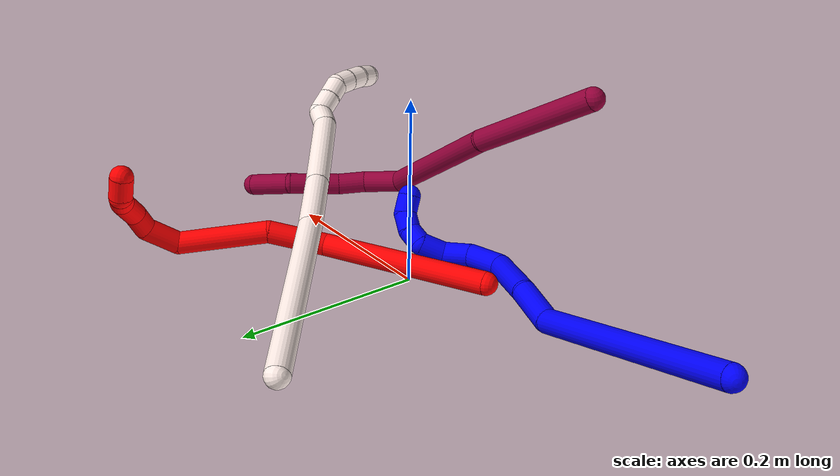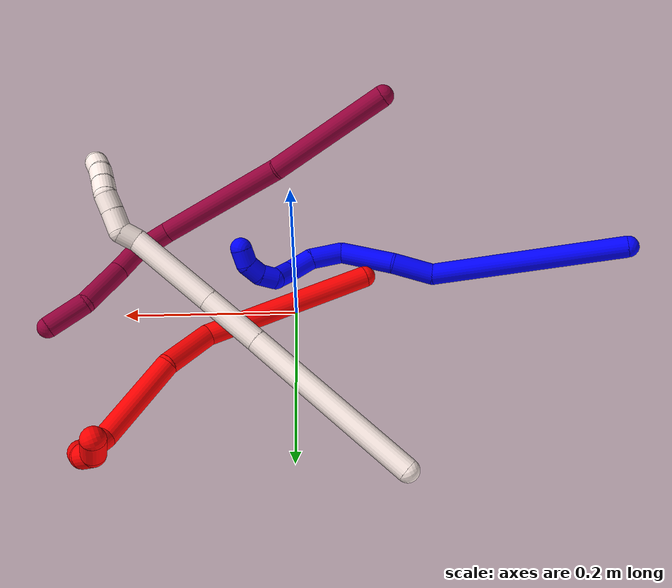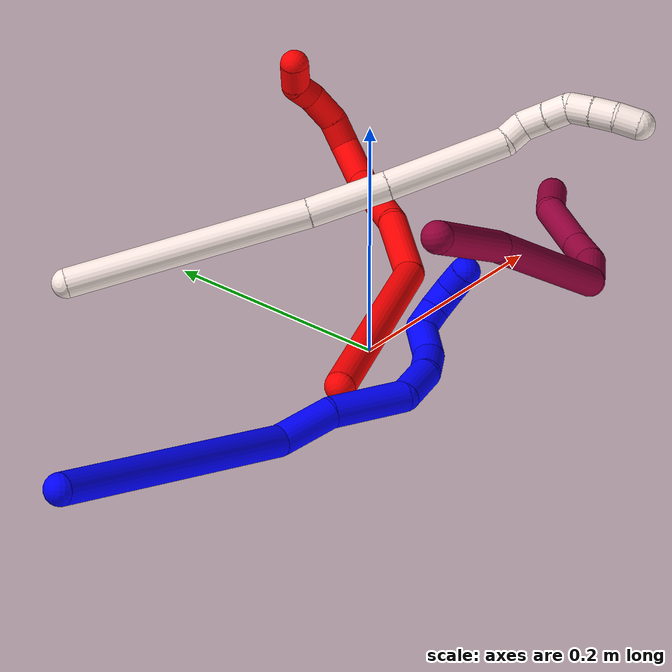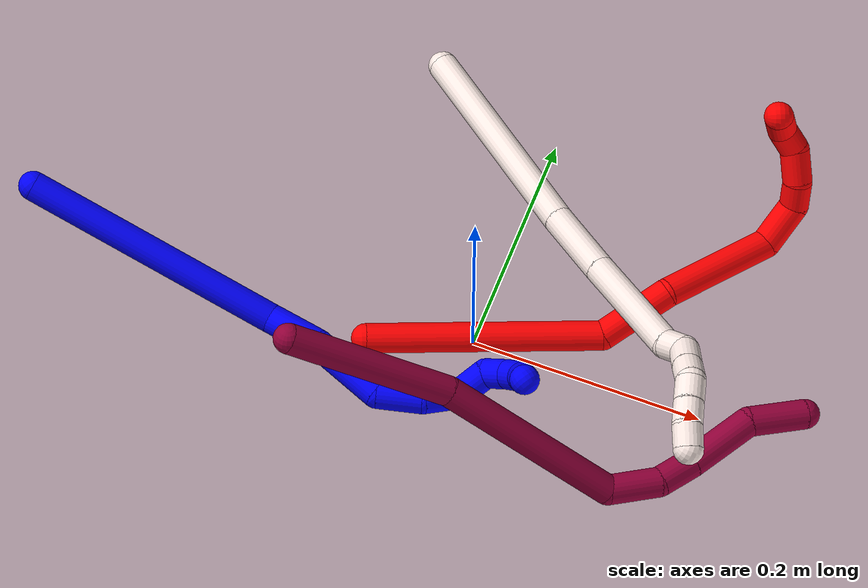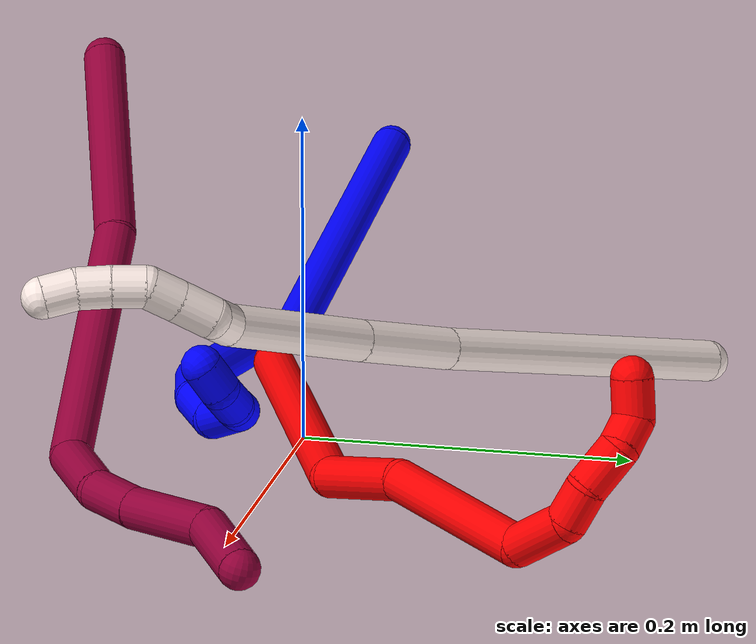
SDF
<sdf version="1.7">
 <world name="default">
  <model name="1">
   <static>0</static>
   <link name="1">
    <collision name="collision-cylinder-e_1_1_4">
     <pose>0.049863 0.018361 -0.10019 -2.96034 0.455232 -2.39384</pose>
     <geometry><cylinder><radius>0.0125</radius><length>0.226817</length></cylinder></geometry>
     <surface>
      <friction><ode><mu>1.16</mu><mu2>1.16</mu2><slip1>0</slip1><slip2>0</slip2></ode></friction>
      <contact><ode><kp>1e+06</kp><kd>1</kd><max_vel>0</max_vel><min_depth>0.001</min_depth></ode></contact>
     </surface>
    </collision>
    <visual name="visual-cylinder-e_1_1_4">
     <pose>0.049863 0.018361 -0.10019 -2.96034 0.455232 -2.39384</pose>
     <geometry><cylinder><radius>0.0125</radius><length>0.226817</length></cylinder></geometry>
     <material><ambient>0 0 1 1</ambient></material>
    </visual>
    <collision name="collision-cylinder-e_2_4_5">
     <pose>0.108578 0.029643 -0.221955 2.82448 0.371749 1.73224</pose>
     <geometry><cylinder><radius>0.0125</radius><length>0.048741</length></cylinder></geometry>
     <surface>
      <friction><ode><mu>1.16</mu><mu2>1.16</mu2><slip1>0</slip1><slip2>0</slip2></ode></friction>
      <contact><ode><kp>1e+06</kp><kd>1</kd><max_vel>0</max_vel><min_depth>0.001</min_depth></ode></contact>
     </surface>
    </collision>
    <visual name="visual-cylinder-e_2_4_5">
     <pose>0.108578 0.029643 -0.221955 2.82448 0.371749 1.73224</pose>
     <geometry><cylinder><radius>0.0125</radius><length>0.048741</length></cylinder></geometry>
     <material><ambient>0 0 1 1</ambient></material>
    </visual>
    <collision name="collision-cylinder-e_3_5_6">
     <pose>0.124726 0.019657 -0.275487 3.05092 0.22356 2.3734</pose>
     <geometry><cylinder><radius>0.0125</radius><length>0.065819</length></cylinder></geometry>
     <surface>
      <friction><ode><mu>1.16</mu><mu2>1.16</mu2><slip1>0</slip1><slip2>0</slip2></ode></friction>
      <contact><ode><kp>1e+06</kp><kd>1</kd><max_vel>0</max_vel><min_depth>0.001</min_depth></ode></contact>
     </surface>
    </collision>
    <visual name="visual-cylinder-e_3_5_6">
     <pose>0.124726 0.019657 -0.275487 3.05092 0.22356 2.3734</pose>
     <geometry><cylinder><radius>0.0125</radius><length>0.065819</length></cylinder></geometry>
     <material><ambient>0 0 1 1</ambient></material>
    </visual>
    <collision name="collision-cylinder-e_4_6_7">
     <pose>0.146202 0.016518 -0.320478 3.1237 0.827481 3.10085</pose>
     <geometry><cylinder><radius>0.0125</radius><length>0.038519</length></cylinder></geometry>
     <surface>
      <friction><ode><mu>1.16</mu><mu2>1.16</mu2><slip1>0</slip1><slip2>0</slip2></ode></friction>
      <contact><ode><kp>1e+06</kp><kd>1</kd><max_vel>0</max_vel><min_depth>0.001</min_depth></ode></contact>
     </surface>
    </collision>
    <visual name="visual-cylinder-e_4_6_7">
     <pose>0.146202 0.016518 -0.320478 3.1237 0.827481 3.10085</pose>
     <geometry><cylinder><radius>0.0125</radius><length>0.038519</length></cylinder></geometry>
     <material><ambient>0 0 1 1</ambient></material>
    </visual>
    <collision name="collision-cylinder-e_5_7_8">
     <pose>0.174173 0.018884 -0.340005 -2.76087 1.10132 -2.53341</pose>
     <geometry><cylinder><radius>0.0125</radius><length>0.03093</length></cylinder></geometry>
     <surface>
      <friction><ode><mu>1.16</mu><mu2>1.16</mu2><slip1>0</slip1><slip2>0</slip2></ode></friction>
      <contact><ode><kp>1e+06</kp><kd>1</kd><max_vel>0</max_vel><min_depth>0.001</min_depth></ode></contact>
     </surface>
    </collision>
    <visual name="visual-cylinder-e_5_7_8">
     <pose>0.174173 0.018884 -0.340005 -2.76087 1.10132 -2.53341</pose>
     <geometry><cylinder><radius>0.0125</radius><length>0.03093</length></cylinder></geometry>
     <material><ambient>0 0 1 1</ambient></material>
    </visual>
    <collision name="collision-cylinder-e_6_8_9">
     <pose>0.201603 0.017918 -0.346463 1.56031 1.31498 1.30485</pose>
     <geometry><cylinder><radius>0.0125</radius><length>0.028193</length></cylinder></geometry>
     <surface>
      <friction><ode><mu>1.16</mu><mu2>1.16</mu2><slip1>0</slip1><slip2>0</slip2></ode></friction>
      <contact><ode><kp>1e+06</kp><kd>1</kd><max_vel>0</max_vel><min_depth>0.001</min_depth></ode></contact>
     </surface>
    </collision>
    <visual name="visual-cylinder-e_6_8_9">
     <pose>0.201603 0.017918 -0.346463 1.56031 1.31498 1.30485</pose>
     <geometry><cylinder><radius>0.0125</radius><length>0.028193</length></cylinder></geometry>
     <material><ambient>0 0 1 1</ambient></material>
    </visual>
    <collision name="collision-cylinder-e_7_9_10">
     <pose>0.221453 0.009443 -0.352693 2.47731 0.662696 1.56822</pose>
     <geometry><cylinder><radius>0.0125</radius><length>0.020195</length></cylinder></geometry>
     <surface>
      <friction><ode><mu>1.16</mu><mu2>1.16</mu2><slip1>0</slip1><slip2>0</slip2></ode></friction>
      <contact><ode><kp>1e+06</kp><kd>1</kd><max_vel>0</max_vel><min_depth>0.001</min_depth></ode></contact>
     </surface>
    </collision>
    <visual name="visual-cylinder-e_7_9_10">
     <pose>0.221453 0.009443 -0.352693 2.47731 0.662696 1.56822</pose>
     <geometry><cylinder><radius>0.0125</radius><length>0.020195</length></cylinder></geometry>
     <material><ambient>0 0 1 1</ambient></material>
    </visual>
    <collision name="collision-cylinder-e_8_10_11">
     <pose>0.230986 -0.003279 -0.364659 2.2008 0.3307 0.634228</pose>
     <geometry><cylinder><radius>0.0125</radius><length>0.020452</length></cylinder></geometry>
     <surface>
      <friction><ode><mu>1.16</mu><mu2>1.16</mu2><slip1>0</slip1><slip2>0</slip2></ode></friction>
      <contact><ode><kp>1e+06</kp><kd>1</kd><max_vel>0</max_vel><min_depth>0.001</min_depth></ode></contact>
     </surface>
    </collision>
    <visual name="visual-cylinder-e_8_10_11">
     <pose>0.230986 -0.003279 -0.364659 2.2008 0.3307 0.634228</pose>
     <geometry><cylinder><radius>0.0125</radius><length>0.020452</length></cylinder></geometry>
     <material><ambient>0 0 1 1</ambient></material>
    </visual>
    <collision name="collision-cylinder-e_9_11_2">
     <pose>0.233236 -0.020666 -0.373612 1.89863 -0.105444 -0.147108</pose>
     <geometry><cylinder><radius>0.0125</radius><length>0.020333</length></cylinder></geometry>
     <surface>
      <friction><ode><mu>1.16</mu><mu2>1.16</mu2><slip1>0</slip1><slip2>0</slip2></ode></friction>
      <contact><ode><kp>1e+06</kp><kd>1</kd><max_vel>0</max_vel><min_depth>0.001</min_depth></ode></contact>
     </surface>
    </collision>
    <visual name="visual-cylinder-e_9_11_2">
     <pose>0.233236 -0.020666 -0.373612 1.89863 -0.105444 -0.147108</pose>
     <geometry><cylinder><radius>0.0125</radius><length>0.020333</length></cylinder></geometry>
     <material><ambient>0 0 1 1</ambient></material>
    </visual>
    <collision name="collision-sphere-2">
     <pose>0.232166 -0.030238 -0.376867 0 -0 0</pose>
     <geometry><sphere><radius>0.0125</radius></sphere></geometry>
     <surface>
      <friction><ode><mu>1.16</mu><mu2>1.16</mu2><slip1>0</slip1><slip2>0</slip2></ode></friction>
      <contact><ode><kp>1e+06</kp><kd>1</kd><max_vel>0</max_vel><min_depth>0.001</min_depth></ode></contact>
     </surface>
    </collision>
    <visual name="visual-sphere-2">
     <pose>0.232166 -0.030238 -0.376867 0 -0 0</pose>
     <geometry><sphere><radius>0.0125</radius></sphere></geometry>
     <material><ambient>0 0 1 1</ambient></material>
    </visual>
    <collision name="collision-sphere-11">
     <pose>0.234306 -0.011094 -0.370357 0 -0 0</pose>
     <geometry><sphere><radius>0.0125</radius></sphere></geometry>
     <surface>
      <friction><ode><mu>1.16</mu><mu2>1.16</mu2><slip1>0</slip1><slip2>0</slip2></ode></friction>
      <contact><ode><kp>1e+06</kp><kd>1</kd><max_vel>0</max_vel><min_depth>0.001</min_depth></ode></contact>
     </surface>
    </collision>
    <visual name="visual-sphere-11">
     <pose>0.234306 -0.011094 -0.370357 0 -0 0</pose>
     <geometry><sphere><radius>0.0125</radius></sphere></geometry>
     <material><ambient>0 0 1 1</ambient></material>
    </visual>
    <collision name="collision-sphere-10">
     <pose>0.227665 0.004536 -0.35896 0 -0 0</pose>
     <geometry><sphere><radius>0.0125</radius></sphere></geometry>
     <surface>
      <friction><ode><mu>1.16</mu><mu2>1.16</mu2><slip1>0</slip1><slip2>0</slip2></ode></friction>
      <contact><ode><kp>1e+06</kp><kd>1</kd><max_vel>0</max_vel><min_depth>0.001</min_depth></ode></contact>
     </surface>
    </collision>
    <visual name="visual-sphere-10">
     <pose>0.227665 0.004536 -0.35896 0 -0 0</pose>
     <geometry><sphere><radius>0.0125</radius></sphere></geometry>
     <material><ambient>0 0 1 1</ambient></material>
    </visual>
    <collision name="collision-sphere-9">
     <pose>0.215241 0.014351 -0.346426 0 -0 0</pose>
     <geometry><sphere><radius>0.0125</radius></sphere></geometry>
     <surface>
      <friction><ode><mu>1.16</mu><mu2>1.16</mu2><slip1>0</slip1><slip2>0</slip2></ode></friction>
      <contact><ode><kp>1e+06</kp><kd>1</kd><max_vel>0</max_vel><min_depth>0.001</min_depth></ode></contact>
     </surface>
    </collision>
    <visual name="visual-sphere-9">
     <pose>0.215241 0.014351 -0.346426 0 -0 0</pose>
     <geometry><sphere><radius>0.0125</radius></sphere></geometry>
     <material><ambient>0 0 1 1</ambient></material>
    </visual>
    <collision name="collision-sphere-4">
     <pose>0.099725 0.036723 -0.200381 0 -0 0</pose>
     <geometry><sphere><radius>0.0125</radius></sphere></geometry>
     <surface>
      <friction><ode><mu>1.16</mu><mu2>1.16</mu2><slip1>0</slip1><slip2>0</slip2></ode></friction>
      <contact><ode><kp>1e+06</kp><kd>1</kd><max_vel>0</max_vel><min_depth>0.001</min_depth></ode></contact>
     </surface>
    </collision>
    <visual name="visual-sphere-4">
     <pose>0.099725 0.036723 -0.200381 0 -0 0</pose>
     <geometry><sphere><radius>0.0125</radius></sphere></geometry>
     <material><ambient>0 0 1 1</ambient></material>
    </visual>
    <collision name="collision-sphere-1">
     <geometry><sphere><radius>0.0125</radius></sphere></geometry>
     <surface>
      <friction><ode><mu>1.16</mu><mu2>1.16</mu2><slip1>0</slip1><slip2>0</slip2></ode></friction>
      <contact><ode><kp>1e+06</kp><kd>1</kd><max_vel>0</max_vel><min_depth>0.001</min_depth></ode></contact>
     </surface>
    </collision>
    <visual name="visual-sphere-1">
     <geometry><sphere><radius>0.0125</radius></sphere></geometry>
     <material><ambient>0 0 1 1</ambient></material>
    </visual>
    <collision name="collision-sphere-8">
     <pose>0.187965 0.021484 -0.3465 0 -0 0</pose>
     <geometry><sphere><radius>0.0125</radius></sphere></geometry>
     <surface>
      <friction><ode><mu>1.16</mu><mu2>1.16</mu2><slip1>0</slip1><slip2>0</slip2></ode></friction>
      <contact><ode><kp>1e+06</kp><kd>1</kd><max_vel>0</max_vel><min_depth>0.001</min_depth></ode></contact>
     </surface>
    </collision>
    <visual name="visual-sphere-8">
     <pose>0.187965 0.021484 -0.3465 0 -0 0</pose>
     <geometry><sphere><radius>0.0125</radius></sphere></geometry>
     <material><ambient>0 0 1 1</ambient></material>
    </visual>
    <collision name="collision-sphere-5">
     <pose>0.11743 0.022562 -0.243529 0 -0 0</pose>
     <geometry><sphere><radius>0.0125</radius></sphere></geometry>
     <surface>
      <friction><ode><mu>1.16</mu><mu2>1.16</mu2><slip1>0</slip1><slip2>0</slip2></ode></friction>
      <contact><ode><kp>1e+06</kp><kd>1</kd><max_vel>0</max_vel><min_depth>0.001</min_depth></ode></contact>
     </surface>
    </collision>
    <visual name="visual-sphere-5">
     <pose>0.11743 0.022562 -0.243529 0 -0 0</pose>
     <geometry><sphere><radius>0.0125</radius></sphere></geometry>
     <material><ambient>0 0 1 1</ambient></material>
    </visual>
    <collision name="collision-sphere-6">
     <pose>0.132022 0.016751 -0.307446 0 -0 0</pose>
     <geometry><sphere><radius>0.0125</radius></sphere></geometry>
     <surface>
      <friction><ode><mu>1.16</mu><mu2>1.16</mu2><slip1>0</slip1><slip2>0</slip2></ode></friction>
      <contact><ode><kp>1e+06</kp><kd>1</kd><max_vel>0</max_vel><min_depth>0.001</min_depth></ode></contact>
     </surface>
    </collision>
    <visual name="visual-sphere-6">
     <pose>0.132022 0.016751 -0.307446 0 -0 0</pose>
     <geometry><sphere><radius>0.0125</radius></sphere></geometry>
     <material><ambient>0 0 1 1</ambient></material>
    </visual>
    <collision name="collision-sphere-7">
     <pose>0.160381 0.016285 -0.333509 0 -0 0</pose>
     <geometry><sphere><radius>0.0125</radius></sphere></geometry>
     <surface>
      <friction><ode><mu>1.16</mu><mu2>1.16</mu2><slip1>0</slip1><slip2>0</slip2></ode></friction>
      <contact><ode><kp>1e+06</kp><kd>1</kd><max_vel>0</max_vel><min_depth>0.001</min_depth></ode></contact>
     </surface>
    </collision>
    <visual name="visual-sphere-7">
     <pose>0.160381 0.016285 -0.333509 0 -0 0</pose>
     <geometry><sphere><radius>0.0125</radius></sphere></geometry>
     <material><ambient>0 0 1 1</ambient></material>
    </visual>
    <inertial>
     <pose>0.110905 0.016664 -0.212963 0 -0 0</pose>
     <mass>0.5</mass>
     <inertia>
      <ixx>-0.00122</ixx>
      <ixy>0</ixy>
      <ixz>0</ixz>
      <iyy>0.000224</iyy>
      <iyz>0</iyz>
      <izz>-0.000633</izz>
     </inertia>
    </inertial>
   </link>
   <pose>-0.380645 -0.029143 0.073387 -1.36033 -0.161684 0.966468</pose>
  </model>
  <model name="2">
   <static>0</static>
   <link name="2">
    <collision name="collision-cylinder-e_1_1_4">
     <pose>-0.001494 -0.000691 0.098515 0.00701 -0.015159 -5.3e-05</pose>
     <geometry><cylinder><radius>0.0125</radius><length>0.197058</length></cylinder></geometry>
     <surface>
      <friction><ode><mu>1.16</mu><mu2>1.16</mu2><slip1>0</slip1><slip2>0</slip2></ode></friction>
      <contact><ode><kp>1e+06</kp><kd>1</kd><max_vel>0</max_vel><min_depth>0.001</min_depth></ode></contact>
     </surface>
    </collision>
    <visual name="visual-cylinder-e_1_1_4">
     <pose>-0.001494 -0.000691 0.098515 0.00701 -0.015159 -5.3e-05</pose>
     <geometry><cylinder><radius>0.0125</radius><length>0.197058</length></cylinder></geometry>
     <material><ambient>1 0 0 1</ambient></material>
    </visual>
    <collision name="collision-cylinder-e_2_4_5">
     <pose>0.005417 0.013632 0.224574 -0.49906 0.261754 -0.067064</pose>
     <geometry><cylinder><radius>0.0125</radius><length>0.064951</length></cylinder></geometry>
     <surface>
      <friction><ode><mu>1.16</mu><mu2>1.16</mu2><slip1>0</slip1><slip2>0</slip2></ode></friction>
      <contact><ode><kp>1e+06</kp><kd>1</kd><max_vel>0</max_vel><min_depth>0.001</min_depth></ode></contact>
     </surface>
    </collision>
    <visual name="visual-cylinder-e_2_4_5">
     <pose>0.005417 0.013632 0.224574 -0.49906 0.261754 -0.067064</pose>
     <geometry><cylinder><radius>0.0125</radius><length>0.064951</length></cylinder></geometry>
     <material><ambient>1 0 0 1</ambient></material>
    </visual>
    <collision name="collision-cylinder-e_3_5_6">
     <pose>0.038214 0.03717 0.295959 -0.192039 0.499888 -0.049165</pose>
     <geometry><cylinder><radius>0.0125</radius><length>0.101781</length></cylinder></geometry>
     <surface>
      <friction><ode><mu>1.16</mu><mu2>1.16</mu2><slip1>0</slip1><slip2>0</slip2></ode></friction>
      <contact><ode><kp>1e+06</kp><kd>1</kd><max_vel>0</max_vel><min_depth>0.001</min_depth></ode></contact>
     </surface>
    </collision>
    <visual name="visual-cylinder-e_3_5_6">
     <pose>0.038214 0.03717 0.295959 -0.192039 0.499888 -0.049165</pose>
     <geometry><cylinder><radius>0.0125</radius><length>0.101781</length></cylinder></geometry>
     <material><ambient>1 0 0 1</ambient></material>
    </visual>
    <collision name="collision-cylinder-e_4_6_7">
     <pose>0.066772 0.061192 0.351456 -0.926006 0.211577 -0.105915</pose>
     <geometry><cylinder><radius>0.0125</radius><length>0.039667</length></cylinder></geometry>
     <surface>
      <friction><ode><mu>1.16</mu><mu2>1.16</mu2><slip1>0</slip1><slip2>0</slip2></ode></friction>
      <contact><ode><kp>1e+06</kp><kd>1</kd><max_vel>0</max_vel><min_depth>0.001</min_depth></ode></contact>
     </surface>
    </collision>
    <visual name="visual-cylinder-e_4_6_7">
     <pose>0.066772 0.061192 0.351456 -0.926006 0.211577 -0.105915</pose>
     <geometry><cylinder><radius>0.0125</radius><length>0.039667</length></cylinder></geometry>
     <material><ambient>1 0 0 1</ambient></material>
    </visual>
    <collision name="collision-cylinder-e_5_7_8">
     <pose>0.070237 0.088502 0.363978 -1.4975 -0.058987 0.054817</pose>
     <geometry><cylinder><radius>0.0125</radius><length>0.023728</length></cylinder></geometry>
     <surface>
      <friction><ode><mu>1.16</mu><mu2>1.16</mu2><slip1>0</slip1><slip2>0</slip2></ode></friction>
      <contact><ode><kp>1e+06</kp><kd>1</kd><max_vel>0</max_vel><min_depth>0.001</min_depth></ode></contact>
     </surface>
    </collision>
    <visual name="visual-cylinder-e_5_7_8">
     <pose>0.070237 0.088502 0.363978 -1.4975 -0.058987 0.054817</pose>
     <geometry><cylinder><radius>0.0125</radius><length>0.023728</length></cylinder></geometry>
     <material><ambient>1 0 0 1</ambient></material>
    </visual>
    <collision name="collision-cylinder-e_6_8_9">
     <pose>0.072145 0.114453 0.363314 -1.67871 0.181268 -0.201833</pose>
     <geometry><cylinder><radius>0.0125</radius><length>0.028918</length></cylinder></geometry>
     <surface>
      <friction><ode><mu>1.16</mu><mu2>1.16</mu2><slip1>0</slip1><slip2>0</slip2></ode></friction>
      <contact><ode><kp>1e+06</kp><kd>1</kd><max_vel>0</max_vel><min_depth>0.001</min_depth></ode></contact>
     </surface>
    </collision>
    <visual name="visual-cylinder-e_6_8_9">
     <pose>0.072145 0.114453 0.363314 -1.67871 0.181268 -0.201833</pose>
     <geometry><cylinder><radius>0.0125</radius><length>0.028918</length></cylinder></geometry>
     <material><ambient>1 0 0 1</ambient></material>
    </visual>
    <collision name="collision-cylinder-e_7_9_10">
     <pose>0.076073 0.137009 0.356495 -2.13171 0.132247 -0.238471</pose>
     <geometry><cylinder><radius>0.0125</radius><length>0.020053</length></cylinder></geometry>
     <surface>
      <friction><ode><mu>1.16</mu><mu2>1.16</mu2><slip1>0</slip1><slip2>0</slip2></ode></friction>
      <contact><ode><kp>1e+06</kp><kd>1</kd><max_vel>0</max_vel><min_depth>0.001</min_depth></ode></contact>
     </surface>
    </collision>
    <visual name="visual-cylinder-e_7_9_10">
     <pose>0.076073 0.137009 0.356495 -2.13171 0.132247 -0.238471</pose>
     <geometry><cylinder><radius>0.0125</radius><length>0.020053</length></cylinder></geometry>
     <material><ambient>1 0 0 1</ambient></material>
    </visual>
    <collision name="collision-cylinder-e_8_10_2">
     <pose>0.071281 0.155308 0.348553 -1.83323 -0.538588 0.690978</pose>
     <geometry><cylinder><radius>0.0125</radius><length>0.023843</length></cylinder></geometry>
     <surface>
      <friction><ode><mu>1.16</mu><mu2>1.16</mu2><slip1>0</slip1><slip2>0</slip2></ode></friction>
      <contact><ode><kp>1e+06</kp><kd>1</kd><max_vel>0</max_vel><min_depth>0.001</min_depth></ode></contact>
     </surface>
    </collision>
    <visual name="visual-cylinder-e_8_10_2">
     <pose>0.071281 0.155308 0.348553 -1.83323 -0.538588 0.690978</pose>
     <geometry><cylinder><radius>0.0125</radius><length>0.023843</length></cylinder></geometry>
     <material><ambient>1 0 0 1</ambient></material>
    </visual>
    <collision name="collision-sphere-2">
     <pose>0.065166 0.165192 0.345898 0 -0 0</pose>
     <geometry><sphere><radius>0.0125</radius></sphere></geometry>
     <surface>
      <friction><ode><mu>1.16</mu><mu2>1.16</mu2><slip1>0</slip1><slip2>0</slip2></ode></friction>
      <contact><ode><kp>1e+06</kp><kd>1</kd><max_vel>0</max_vel><min_depth>0.001</min_depth></ode></contact>
     </surface>
    </collision>
    <visual name="visual-sphere-2">
     <pose>0.065166 0.165192 0.345898 0 -0 0</pose>
     <geometry><sphere><radius>0.0125</radius></sphere></geometry>
     <material><ambient>1 0 0 1</ambient></material>
    </visual>
    <collision name="collision-sphere-10">
     <pose>0.077396 0.145425 0.351208 0 -0 0</pose>
     <geometry><sphere><radius>0.0125</radius></sphere></geometry>
     <surface>
      <friction><ode><mu>1.16</mu><mu2>1.16</mu2><slip1>0</slip1><slip2>0</slip2></ode></friction>
      <contact><ode><kp>1e+06</kp><kd>1</kd><max_vel>0</max_vel><min_depth>0.001</min_depth></ode></contact>
     </surface>
    </collision>
    <visual name="visual-sphere-10">
     <pose>0.077396 0.145425 0.351208 0 -0 0</pose>
     <geometry><sphere><radius>0.0125</radius></sphere></geometry>
     <material><ambient>1 0 0 1</ambient></material>
    </visual>
    <collision name="collision-sphere-9">
     <pose>0.074751 0.128593 0.361782 0 -0 0</pose>
     <geometry><sphere><radius>0.0125</radius></sphere></geometry>
     <surface>
      <friction><ode><mu>1.16</mu><mu2>1.16</mu2><slip1>0</slip1><slip2>0</slip2></ode></friction>
      <contact><ode><kp>1e+06</kp><kd>1</kd><max_vel>0</max_vel><min_depth>0.001</min_depth></ode></contact>
     </surface>
    </collision>
    <visual name="visual-sphere-9">
     <pose>0.074751 0.128593 0.361782 0 -0 0</pose>
     <geometry><sphere><radius>0.0125</radius></sphere></geometry>
     <material><ambient>1 0 0 1</ambient></material>
    </visual>
    <collision name="collision-sphere-4">
     <pose>-0.002987 -0.001381 0.197031 0 -0 0</pose>
     <geometry><sphere><radius>0.0125</radius></sphere></geometry>
     <surface>
      <friction><ode><mu>1.16</mu><mu2>1.16</mu2><slip1>0</slip1><slip2>0</slip2></ode></friction>
      <contact><ode><kp>1e+06</kp><kd>1</kd><max_vel>0</max_vel><min_depth>0.001</min_depth></ode></contact>
     </surface>
    </collision>
    <visual name="visual-sphere-4">
     <pose>-0.002987 -0.001381 0.197031 0 -0 0</pose>
     <geometry><sphere><radius>0.0125</radius></sphere></geometry>
     <material><ambient>1 0 0 1</ambient></material>
    </visual>
    <collision name="collision-sphere-1">
     <geometry><sphere><radius>0.0125</radius></sphere></geometry>
     <surface>
      <friction><ode><mu>1.16</mu><mu2>1.16</mu2><slip1>0</slip1><slip2>0</slip2></ode></friction>
      <contact><ode><kp>1e+06</kp><kd>1</kd><max_vel>0</max_vel><min_depth>0.001</min_depth></ode></contact>
     </surface>
    </collision>
    <visual name="visual-sphere-1">
     <geometry><sphere><radius>0.0125</radius></sphere></geometry>
     <material><ambient>1 0 0 1</ambient></material>
    </visual>
    <collision name="collision-sphere-8">
     <pose>0.069538 0.100314 0.364846 0 -0 0</pose>
     <geometry><sphere><radius>0.0125</radius></sphere></geometry>
     <surface>
      <friction><ode><mu>1.16</mu><mu2>1.16</mu2><slip1>0</slip1><slip2>0</slip2></ode></friction>
      <contact><ode><kp>1e+06</kp><kd>1</kd><max_vel>0</max_vel><min_depth>0.001</min_depth></ode></contact>
     </surface>
    </collision>
    <visual name="visual-sphere-8">
     <pose>0.069538 0.100314 0.364846 0 -0 0</pose>
     <geometry><sphere><radius>0.0125</radius></sphere></geometry>
     <material><ambient>1 0 0 1</ambient></material>
    </visual>
    <collision name="collision-sphere-5">
     <pose>0.01382 0.028645 0.252117 0 -0 0</pose>
     <geometry><sphere><radius>0.0125</radius></sphere></geometry>
     <surface>
      <friction><ode><mu>1.16</mu><mu2>1.16</mu2><slip1>0</slip1><slip2>0</slip2></ode></friction>
      <contact><ode><kp>1e+06</kp><kd>1</kd><max_vel>0</max_vel><min_depth>0.001</min_depth></ode></contact>
     </surface>
    </collision>
    <visual name="visual-sphere-5">
     <pose>0.01382 0.028645 0.252117 0 -0 0</pose>
     <geometry><sphere><radius>0.0125</radius></sphere></geometry>
     <material><ambient>1 0 0 1</ambient></material>
    </visual>
    <collision name="collision-sphere-6">
     <pose>0.062607 0.045694 0.339802 0 -0 0</pose>
     <geometry><sphere><radius>0.0125</radius></sphere></geometry>
     <surface>
      <friction><ode><mu>1.16</mu><mu2>1.16</mu2><slip1>0</slip1><slip2>0</slip2></ode></friction>
      <contact><ode><kp>1e+06</kp><kd>1</kd><max_vel>0</max_vel><min_depth>0.001</min_depth></ode></contact>
     </surface>
    </collision>
    <visual name="visual-sphere-6">
     <pose>0.062607 0.045694 0.339802 0 -0 0</pose>
     <geometry><sphere><radius>0.0125</radius></sphere></geometry>
     <material><ambient>1 0 0 1</ambient></material>
    </visual>
    <collision name="collision-sphere-7">
     <pose>0.070937 0.07669 0.363111 0 -0 0</pose>
     <geometry><sphere><radius>0.0125</radius></sphere></geometry>
     <surface>
      <friction><ode><mu>1.16</mu><mu2>1.16</mu2><slip1>0</slip1><slip2>0</slip2></ode></friction>
      <contact><ode><kp>1e+06</kp><kd>1</kd><max_vel>0</max_vel><min_depth>0.001</min_depth></ode></contact>
     </surface>
    </collision>
    <visual name="visual-sphere-7">
     <pose>0.070937 0.07669 0.363111 0 -0 0</pose>
     <geometry><sphere><radius>0.0125</radius></sphere></geometry>
     <material><ambient>1 0 0 1</ambient></material>
    </visual>
    <inertial>
     <pose>0.027147 0.03764 0.225333 0 -0 0</pose>
     <mass>0.5</mass>
     <inertia>
      <ixx>0.000764</ixx>
      <ixy>0</ixy>
      <ixz>0</ixz>
      <iyy>0.000769</iyy>
      <iyz>0</iyz>
      <izz>-5.1e-05</izz>
     </inertia>
    </inertial>
   </link>
   <pose>-0.080873 -0.037088 0.019604 1.61859 0.543929 2.01179</pose>
  </model>
  <model name="8">
   <static>0</static>
   <link name="8">
    <collision name="collision-cylinder-e_1_1_4">
     <pose>0.057542 0.03006 -0.034505 -2.42494 0.898941 -1.82134</pose>
     <geometry><cylinder><radius>0.0125</radius><length>0.147042</length></cylinder></geometry>
     <surface>
      <friction><ode><mu>1.16</mu><mu2>1.16</mu2><slip1>0</slip1><slip2>0</slip2></ode></friction>
      <contact><ode><kp>1e+06</kp><kd>1</kd><max_vel>0</max_vel><min_depth>0.001</min_depth></ode></contact>
     </surface>
    </collision>
    <visual name="visual-cylinder-e_1_1_4">
     <pose>0.057542 0.03006 -0.034505 -2.42494 0.898941 -1.82134</pose>
     <geometry><cylinder><radius>0.0125</radius><length>0.147042</length></cylinder></geometry>
     <material><ambient>0.584314 0 0.227451 1</ambient></material>
    </visual>
    <collision name="collision-cylinder-e_2_4_5">
     <pose>0.179879 0.078541 -0.117592 -2.77915 0.894913 -2.41216</pose>
     <geometry><cylinder><radius>0.0125</radius><length>0.166106</length></cylinder></geometry>
     <surface>
      <friction><ode><mu>1.16</mu><mu2>1.16</mu2><slip1>0</slip1><slip2>0</slip2></ode></friction>
      <contact><ode><kp>1e+06</kp><kd>1</kd><max_vel>0</max_vel><min_depth>0.001</min_depth></ode></contact>
     </surface>
    </collision>
    <visual name="visual-cylinder-e_2_4_5">
     <pose>0.179879 0.078541 -0.117592 -2.77915 0.894913 -2.41216</pose>
     <geometry><cylinder><radius>0.0125</radius><length>0.166106</length></cylinder></geometry>
     <material><ambient>0.584314 0 0.227451 1</ambient></material>
    </visual>
    <collision name="collision-cylinder-e_3_5_6">
     <pose>0.261963 0.110803 -0.167314 -1.65307 0.894132 -0.959992</pose>
     <geometry><cylinder><radius>0.0125</radius><length>0.044351</length></cylinder></geometry>
     <surface>
      <friction><ode><mu>1.16</mu><mu2>1.16</mu2><slip1>0</slip1><slip2>0</slip2></ode></friction>
      <contact><ode><kp>1e+06</kp><kd>1</kd><max_vel>0</max_vel><min_depth>0.001</min_depth></ode></contact>
     </surface>
    </collision>
    <visual name="visual-cylinder-e_3_5_6">
     <pose>0.261963 0.110803 -0.167314 -1.65307 0.894132 -0.959992</pose>
     <geometry><cylinder><radius>0.0125</radius><length>0.044351</length></cylinder></geometry>
     <material><ambient>0.584314 0 0.227451 1</ambient></material>
    </visual>
    <collision name="collision-cylinder-e_4_6_7">
     <pose>0.287899 0.138629 -0.166955 -1.46394 0.551116 -0.49756</pose>
     <geometry><cylinder><radius>0.0125</radius><length>0.033025</length></cylinder></geometry>
     <surface>
      <friction><ode><mu>1.16</mu><mu2>1.16</mu2><slip1>0</slip1><slip2>0</slip2></ode></friction>
      <contact><ode><kp>1e+06</kp><kd>1</kd><max_vel>0</max_vel><min_depth>0.001</min_depth></ode></contact>
     </surface>
    </collision>
    <visual name="visual-cylinder-e_4_6_7">
     <pose>0.287899 0.138629 -0.166955 -1.46394 0.551116 -0.49756</pose>
     <geometry><cylinder><radius>0.0125</radius><length>0.033025</length></cylinder></geometry>
     <material><ambient>0.584314 0 0.227451 1</ambient></material>
    </visual>
    <collision name="collision-cylinder-e_5_7_8">
     <pose>0.311395 0.177706 -0.158685 -1.30725 0.519146 -0.401336</pose>
     <geometry><cylinder><radius>0.0125</radius><length>0.05986</length></cylinder></geometry>
     <surface>
      <friction><ode><mu>1.16</mu><mu2>1.16</mu2><slip1>0</slip1><slip2>0</slip2></ode></friction>
      <contact><ode><kp>1e+06</kp><kd>1</kd><max_vel>0</max_vel><min_depth>0.001</min_depth></ode></contact>
     </surface>
    </collision>
    <visual name="visual-cylinder-e_5_7_8">
     <pose>0.311395 0.177706 -0.158685 -1.30725 0.519146 -0.401336</pose>
     <geometry><cylinder><radius>0.0125</radius><length>0.05986</length></cylinder></geometry>
     <material><ambient>0.584314 0 0.227451 1</ambient></material>
    </visual>
    <collision name="collision-cylinder-e_6_8_2">
     <pose>0.34555 0.218255 -0.153843 -1.69485 0.891789 -0.992289</pose>
     <geometry><cylinder><radius>0.0125</radius><length>0.049616</length></cylinder></geometry>
     <surface>
      <friction><ode><mu>1.16</mu><mu2>1.16</mu2><slip1>0</slip1><slip2>0</slip2></ode></friction>
      <contact><ode><kp>1e+06</kp><kd>1</kd><max_vel>0</max_vel><min_depth>0.001</min_depth></ode></contact>
     </surface>
    </collision>
    <visual name="visual-cylinder-e_6_8_2">
     <pose>0.34555 0.218255 -0.153843 -1.69485 0.891789 -0.992289</pose>
     <geometry><cylinder><radius>0.0125</radius><length>0.049616</length></cylinder></geometry>
     <material><ambient>0.584314 0 0.227451 1</ambient></material>
    </visual>
    <collision name="collision-sphere-2">
     <pose>0.364856 0.233715 -0.155771 0 -0 0</pose>
     <geometry><sphere><radius>0.0125</radius></sphere></geometry>
     <surface>
      <friction><ode><mu>1.16</mu><mu2>1.16</mu2><slip1>0</slip1><slip2>0</slip2></ode></friction>
      <contact><ode><kp>1e+06</kp><kd>1</kd><max_vel>0</max_vel><min_depth>0.001</min_depth></ode></contact>
     </surface>
    </collision>
    <visual name="visual-sphere-2">
     <pose>0.364856 0.233715 -0.155771 0 -0 0</pose>
     <geometry><sphere><radius>0.0125</radius></sphere></geometry>
     <material><ambient>0.584314 0 0.227451 1</ambient></material>
    </visual>
    <collision name="collision-sphere-4">
     <pose>0.115085 0.060119 -0.06901 0 -0 0</pose>
     <geometry><sphere><radius>0.0125</radius></sphere></geometry>
     <surface>
      <friction><ode><mu>1.16</mu><mu2>1.16</mu2><slip1>0</slip1><slip2>0</slip2></ode></friction>
      <contact><ode><kp>1e+06</kp><kd>1</kd><max_vel>0</max_vel><min_depth>0.001</min_depth></ode></contact>
     </surface>
    </collision>
    <visual name="visual-sphere-4">
     <pose>0.115085 0.060119 -0.06901 0 -0 0</pose>
     <geometry><sphere><radius>0.0125</radius></sphere></geometry>
     <material><ambient>0.584314 0 0.227451 1</ambient></material>
    </visual>
    <collision name="collision-sphere-1">
     <geometry><sphere><radius>0.0125</radius></sphere></geometry>
     <surface>
      <friction><ode><mu>1.16</mu><mu2>1.16</mu2><slip1>0</slip1><slip2>0</slip2></ode></friction>
      <contact><ode><kp>1e+06</kp><kd>1</kd><max_vel>0</max_vel><min_depth>0.001</min_depth></ode></contact>
     </surface>
    </collision>
    <visual name="visual-sphere-1">
     <geometry><sphere><radius>0.0125</radius></sphere></geometry>
     <material><ambient>0.584314 0 0.227451 1</ambient></material>
    </visual>
    <collision name="collision-sphere-8">
     <pose>0.326245 0.202795 -0.151915 0 -0 0</pose>
     <geometry><sphere><radius>0.0125</radius></sphere></geometry>
     <surface>
      <friction><ode><mu>1.16</mu><mu2>1.16</mu2><slip1>0</slip1><slip2>0</slip2></ode></friction>
      <contact><ode><kp>1e+06</kp><kd>1</kd><max_vel>0</max_vel><min_depth>0.001</min_depth></ode></contact>
     </surface>
    </collision>
    <visual name="visual-sphere-8">
     <pose>0.326245 0.202795 -0.151915 0 -0 0</pose>
     <geometry><sphere><radius>0.0125</radius></sphere></geometry>
     <material><ambient>0.584314 0 0.227451 1</ambient></material>
    </visual>
    <collision name="collision-sphere-5">
     <pose>0.244673 0.096963 -0.166173 0 -0 0</pose>
     <geometry><sphere><radius>0.0125</radius></sphere></geometry>
     <surface>
      <friction><ode><mu>1.16</mu><mu2>1.16</mu2><slip1>0</slip1><slip2>0</slip2></ode></friction>
      <contact><ode><kp>1e+06</kp><kd>1</kd><max_vel>0</max_vel><min_depth>0.001</min_depth></ode></contact>
     </surface>
    </collision>
    <visual name="visual-sphere-5">
     <pose>0.244673 0.096963 -0.166173 0 -0 0</pose>
     <geometry><sphere><radius>0.0125</radius></sphere></geometry>
     <material><ambient>0.584314 0 0.227451 1</ambient></material>
    </visual>
    <collision name="collision-sphere-6">
     <pose>0.279253 0.124642 -0.168456 0 -0 0</pose>
     <geometry><sphere><radius>0.0125</radius></sphere></geometry>
     <surface>
      <friction><ode><mu>1.16</mu><mu2>1.16</mu2><slip1>0</slip1><slip2>0</slip2></ode></friction>
      <contact><ode><kp>1e+06</kp><kd>1</kd><max_vel>0</max_vel><min_depth>0.001</min_depth></ode></contact>
     </surface>
    </collision>
    <visual name="visual-sphere-6">
     <pose>0.279253 0.124642 -0.168456 0 -0 0</pose>
     <geometry><sphere><radius>0.0125</radius></sphere></geometry>
     <material><ambient>0.584314 0 0.227451 1</ambient></material>
    </visual>
    <collision name="collision-sphere-7">
     <pose>0.296546 0.152617 -0.165455 0 -0 0</pose>
     <geometry><sphere><radius>0.0125</radius></sphere></geometry>
     <surface>
      <friction><ode><mu>1.16</mu><mu2>1.16</mu2><slip1>0</slip1><slip2>0</slip2></ode></friction>
      <contact><ode><kp>1e+06</kp><kd>1</kd><max_vel>0</max_vel><min_depth>0.001</min_depth></ode></contact>
     </surface>
    </collision>
    <visual name="visual-sphere-7">
     <pose>0.296546 0.152617 -0.165455 0 -0 0</pose>
     <geometry><sphere><radius>0.0125</radius></sphere></geometry>
     <material><ambient>0.584314 0 0.227451 1</ambient></material>
    </visual>
    <inertial>
     <pose>0.190503 0.09685 -0.109345 0 -0 0</pose>
     <mass>0.5</mass>
     <inertia>
      <ixx>-0.000512</ixx>
      <ixy>0</ixy>
      <ixz>0</ixz>
      <iyy>0.000224</iyy>
      <iyz>0</iyz>
      <izz>-0.000786</izz>
     </inertia>
    </inertial>
   </link>
   <pose>-0.102105 -0.14739 0.200453 -0.250899 -0.068541 -0.032495</pose>
  </model>
  <model name="11">
   <static>0</static>
   <link name="11">
    <collision name="collision-cylinder-e_1_1_4">
     <pose>0.065589 -0.06193 -0.048851 2.23868 0.693664 1.28119</pose>
     <geometry><cylinder><radius>0.0125</radius><length>0.20517</length></cylinder></geometry>
     <surface>
      <friction><ode><mu>1.16</mu><mu2>1.16</mu2><slip1>0</slip1><slip2>0</slip2></ode></friction>
      <contact><ode><kp>1e+06</kp><kd>1</kd><max_vel>0</max_vel><min_depth>0.001</min_depth></ode></contact>
     </surface>
    </collision>
    <visual name="visual-cylinder-e_1_1_4">
     <pose>0.065589 -0.06193 -0.048851 2.23868 0.693664 1.28119</pose>
     <geometry><cylinder><radius>0.0125</radius><length>0.20517</length></cylinder></geometry>
     <material><ambient>1 0.933333 0.909804 1</ambient></material>
    </visual>
    <collision name="collision-cylinder-e_2_4_5">
     <pose>0.154102 -0.143123 -0.113782 2.26636 0.740308 1.3848</pose>
     <geometry><cylinder><radius>0.0125</radius><length>0.067974</length></cylinder></geometry>
     <surface>
      <friction><ode><mu>1.16</mu><mu2>1.16</mu2><slip1>0</slip1><slip2>0</slip2></ode></friction>
      <contact><ode><kp>1e+06</kp><kd>1</kd><max_vel>0</max_vel><min_depth>0.001</min_depth></ode></contact>
     </surface>
    </collision>
    <visual name="visual-cylinder-e_2_4_5">
     <pose>0.154102 -0.143123 -0.113782 2.26636 0.740308 1.3848</pose>
     <geometry><cylinder><radius>0.0125</radius><length>0.067974</length></cylinder></geometry>
     <material><ambient>1 0.933333 0.909804 1</ambient></material>
    </visual>
    <collision name="collision-cylinder-e_3_5_6">
     <pose>0.21253 -0.190523 -0.154028 2.28042 0.763528 1.43654</pose>
     <geometry><cylinder><radius>0.0125</radius><length>0.10269</length></cylinder></geometry>
     <surface>
      <friction><ode><mu>1.16</mu><mu2>1.16</mu2><slip1>0</slip1><slip2>0</slip2></ode></friction>
      <contact><ode><kp>1e+06</kp><kd>1</kd><max_vel>0</max_vel><min_depth>0.001</min_depth></ode></contact>
     </surface>
    </collision>
    <visual name="visual-cylinder-e_3_5_6">
     <pose>0.21253 -0.190523 -0.154028 2.28042 0.763528 1.43654</pose>
     <geometry><cylinder><radius>0.0125</radius><length>0.10269</length></cylinder></geometry>
     <material><ambient>1 0.933333 0.909804 1</ambient></material>
    </visual>
    <collision name="collision-cylinder-e_4_6_7">
     <pose>0.256335 -0.22044 -0.18365 2.82631 0.965955 2.55294</pose>
     <geometry><cylinder><radius>0.0125</radius><length>0.020182</length></cylinder></geometry>
     <surface>
      <friction><ode><mu>1.16</mu><mu2>1.16</mu2><slip1>0</slip1><slip2>0</slip2></ode></friction>
      <contact><ode><kp>1e+06</kp><kd>1</kd><max_vel>0</max_vel><min_depth>0.001</min_depth></ode></contact>
     </surface>
    </collision>
    <visual name="visual-cylinder-e_4_6_7">
     <pose>0.256335 -0.22044 -0.18365 2.82631 0.965955 2.55294</pose>
     <geometry><cylinder><radius>0.0125</radius><length>0.020182</length></cylinder></geometry>
     <material><ambient>1 0.933333 0.909804 1</ambient></material>
    </visual>
    <collision name="collision-cylinder-e_5_7_8">
     <pose>0.273391 -0.23025 -0.189191 1.5815 0.828568 0.836488</pose>
     <geometry><cylinder><radius>0.0125</radius><length>0.023761</length></cylinder></geometry>
     <surface>
      <friction><ode><mu>1.16</mu><mu2>1.16</mu2><slip1>0</slip1><slip2>0</slip2></ode></friction>
      <contact><ode><kp>1e+06</kp><kd>1</kd><max_vel>0</max_vel><min_depth>0.001</min_depth></ode></contact>
     </surface>
    </collision>
    <visual name="visual-cylinder-e_5_7_8">
     <pose>0.273391 -0.23025 -0.189191 1.5815 0.828568 0.836488</pose>
     <geometry><cylinder><radius>0.0125</radius><length>0.023761</length></cylinder></geometry>
     <material><ambient>1 0.933333 0.909804 1</ambient></material>
    </visual>
    <collision name="collision-cylinder-e_6_8_9">
     <pose>0.289599 -0.245016 -0.189647 1.62565 0.835015 0.876446</pose>
     <geometry><cylinder><radius>0.0125</radius><length>0.020104</length></cylinder></geometry>
     <surface>
      <friction><ode><mu>1.16</mu><mu2>1.16</mu2><slip1>0</slip1><slip2>0</slip2></ode></friction>
      <contact><ode><kp>1e+06</kp><kd>1</kd><max_vel>0</max_vel><min_depth>0.001</min_depth></ode></contact>
     </surface>
    </collision>
    <visual name="visual-cylinder-e_6_8_9">
     <pose>0.289599 -0.245016 -0.189647 1.62565 0.835015 0.876446</pose>
     <geometry><cylinder><radius>0.0125</radius><length>0.020104</length></cylinder></geometry>
     <material><ambient>1 0.933333 0.909804 1</ambient></material>
    </visual>
    <collision name="collision-cylinder-e_7_9_10">
     <pose>0.300086 -0.261262 -0.190906 1.66399 0.307755 0.337319</pose>
     <geometry><cylinder><radius>0.0125</radius><length>0.020044</length></cylinder></geometry>
     <surface>
      <friction><ode><mu>1.16</mu><mu2>1.16</mu2><slip1>0</slip1><slip2>0</slip2></ode></friction>
      <contact><ode><kp>1e+06</kp><kd>1</kd><max_vel>0</max_vel><min_depth>0.001</min_depth></ode></contact>
     </surface>
    </collision>
    <visual name="visual-cylinder-e_7_9_10">
     <pose>0.300086 -0.261262 -0.190906 1.66399 0.307755 0.337319</pose>
     <geometry><cylinder><radius>0.0125</radius><length>0.020044</length></cylinder></geometry>
     <material><ambient>1 0.933333 0.909804 1</ambient></material>
    </visual>
    <collision name="collision-cylinder-e_8_10_11">
     <pose>0.305723 -0.280376 -0.19309 1.70487 0.262244 0.299463</pose>
     <geometry><cylinder><radius>0.0125</radius><length>0.020068</length></cylinder></geometry>
     <surface>
      <friction><ode><mu>1.16</mu><mu2>1.16</mu2><slip1>0</slip1><slip2>0</slip2></ode></friction>
      <contact><ode><kp>1e+06</kp><kd>1</kd><max_vel>0</max_vel><min_depth>0.001</min_depth></ode></contact>
     </surface>
    </collision>
    <visual name="visual-cylinder-e_8_10_11">
     <pose>0.305723 -0.280376 -0.19309 1.70487 0.262244 0.299463</pose>
     <geometry><cylinder><radius>0.0125</radius><length>0.020068</length></cylinder></geometry>
     <material><ambient>1 0.933333 0.909804 1</ambient></material>
    </visual>
    <collision name="collision-cylinder-e_9_11_2">
     <pose>0.309835 -0.29941 -0.197363 1.87662 0.151614 0.206521</pose>
     <geometry><cylinder><radius>0.0125</radius><length>0.020007</length></cylinder></geometry>
     <surface>
      <friction><ode><mu>1.16</mu><mu2>1.16</mu2><slip1>0</slip1><slip2>0</slip2></ode></friction>
      <contact><ode><kp>1e+06</kp><kd>1</kd><max_vel>0</max_vel><min_depth>0.001</min_depth></ode></contact>
     </surface>
    </collision>
    <visual name="visual-cylinder-e_9_11_2">
     <pose>0.309835 -0.29941 -0.197363 1.87662 0.151614 0.206521</pose>
     <geometry><cylinder><radius>0.0125</radius><length>0.020007</length></cylinder></geometry>
     <material><ambient>1 0.933333 0.909804 1</ambient></material>
    </visual>
    <collision name="collision-sphere-2">
     <pose>0.311346 -0.308839 -0.20034 0 -0 0</pose>
     <geometry><sphere><radius>0.0125</radius></sphere></geometry>
     <surface>
      <friction><ode><mu>1.16</mu><mu2>1.16</mu2><slip1>0</slip1><slip2>0</slip2></ode></friction>
      <contact><ode><kp>1e+06</kp><kd>1</kd><max_vel>0</max_vel><min_depth>0.001</min_depth></ode></contact>
     </surface>
    </collision>
    <visual name="visual-sphere-2">
     <pose>0.311346 -0.308839 -0.20034 0 -0 0</pose>
     <geometry><sphere><radius>0.0125</radius></sphere></geometry>
     <material><ambient>1 0.933333 0.909804 1</ambient></material>
    </visual>
    <collision name="collision-sphere-11">
     <pose>0.308325 -0.28998 -0.194386 0 -0 0</pose>
     <geometry><sphere><radius>0.0125</radius></sphere></geometry>
     <surface>
      <friction><ode><mu>1.16</mu><mu2>1.16</mu2><slip1>0</slip1><slip2>0</slip2></ode></friction>
      <contact><ode><kp>1e+06</kp><kd>1</kd><max_vel>0</max_vel><min_depth>0.001</min_depth></ode></contact>
     </surface>
    </collision>
    <visual name="visual-sphere-11">
     <pose>0.308325 -0.28998 -0.194386 0 -0 0</pose>
     <geometry><sphere><radius>0.0125</radius></sphere></geometry>
     <material><ambient>1 0.933333 0.909804 1</ambient></material>
    </visual>
    <collision name="collision-sphere-10">
     <pose>0.303122 -0.270772 -0.191795 0 -0 0</pose>
     <geometry><sphere><radius>0.0125</radius></sphere></geometry>
     <surface>
      <friction><ode><mu>1.16</mu><mu2>1.16</mu2><slip1>0</slip1><slip2>0</slip2></ode></friction>
      <contact><ode><kp>1e+06</kp><kd>1</kd><max_vel>0</max_vel><min_depth>0.001</min_depth></ode></contact>
     </surface>
    </collision>
    <visual name="visual-sphere-10">
     <pose>0.303122 -0.270772 -0.191795 0 -0 0</pose>
     <geometry><sphere><radius>0.0125</radius></sphere></geometry>
     <material><ambient>1 0.933333 0.909804 1</ambient></material>
    </visual>
    <collision name="collision-sphere-9">
     <pose>0.29705 -0.251753 -0.190017 0 -0 0</pose>
     <geometry><sphere><radius>0.0125</radius></sphere></geometry>
     <surface>
      <friction><ode><mu>1.16</mu><mu2>1.16</mu2><slip1>0</slip1><slip2>0</slip2></ode></friction>
      <contact><ode><kp>1e+06</kp><kd>1</kd><max_vel>0</max_vel><min_depth>0.001</min_depth></ode></contact>
     </surface>
    </collision>
    <visual name="visual-sphere-9">
     <pose>0.29705 -0.251753 -0.190017 0 -0 0</pose>
     <geometry><sphere><radius>0.0125</radius></sphere></geometry>
     <material><ambient>1 0.933333 0.909804 1</ambient></material>
    </visual>
    <collision name="collision-sphere-4">
     <pose>0.131177 -0.12386 -0.097703 0 -0 0</pose>
     <geometry><sphere><radius>0.0125</radius></sphere></geometry>
     <surface>
      <friction><ode><mu>1.16</mu><mu2>1.16</mu2><slip1>0</slip1><slip2>0</slip2></ode></friction>
      <contact><ode><kp>1e+06</kp><kd>1</kd><max_vel>0</max_vel><min_depth>0.001</min_depth></ode></contact>
     </surface>
    </collision>
    <visual name="visual-sphere-4">
     <pose>0.131177 -0.12386 -0.097703 0 -0 0</pose>
     <geometry><sphere><radius>0.0125</radius></sphere></geometry>
     <material><ambient>1 0.933333 0.909804 1</ambient></material>
    </visual>
    <collision name="collision-sphere-1">
     <geometry><sphere><radius>0.0125</radius></sphere></geometry>
     <surface>
      <friction><ode><mu>1.16</mu><mu2>1.16</mu2><slip1>0</slip1><slip2>0</slip2></ode></friction>
      <contact><ode><kp>1e+06</kp><kd>1</kd><max_vel>0</max_vel><min_depth>0.001</min_depth></ode></contact>
     </surface>
    </collision>
    <visual name="visual-sphere-1">
     <geometry><sphere><radius>0.0125</radius></sphere></geometry>
     <material><ambient>1 0.933333 0.909804 1</ambient></material>
    </visual>
    <collision name="collision-sphere-8">
     <pose>0.282147 -0.23828 -0.189277 0 -0 0</pose>
     <geometry><sphere><radius>0.0125</radius></sphere></geometry>
     <surface>
      <friction><ode><mu>1.16</mu><mu2>1.16</mu2><slip1>0</slip1><slip2>0</slip2></ode></friction>
      <contact><ode><kp>1e+06</kp><kd>1</kd><max_vel>0</max_vel><min_depth>0.001</min_depth></ode></contact>
     </surface>
    </collision>
    <visual name="visual-sphere-8">
     <pose>0.282147 -0.23828 -0.189277 0 -0 0</pose>
     <geometry><sphere><radius>0.0125</radius></sphere></geometry>
     <material><ambient>1 0.933333 0.909804 1</ambient></material>
    </visual>
    <collision name="collision-sphere-5">
     <pose>0.177026 -0.162385 -0.129861 0 -0 0</pose>
     <geometry><sphere><radius>0.0125</radius></sphere></geometry>
     <surface>
      <friction><ode><mu>1.16</mu><mu2>1.16</mu2><slip1>0</slip1><slip2>0</slip2></ode></friction>
      <contact><ode><kp>1e+06</kp><kd>1</kd><max_vel>0</max_vel><min_depth>0.001</min_depth></ode></contact>
     </surface>
    </collision>
    <visual name="visual-sphere-5">
     <pose>0.177026 -0.162385 -0.129861 0 -0 0</pose>
     <geometry><sphere><radius>0.0125</radius></sphere></geometry>
     <material><ambient>1 0.933333 0.909804 1</ambient></material>
    </visual>
    <collision name="collision-sphere-6">
     <pose>0.248034 -0.218661 -0.178195 0 -0 0</pose>
     <geometry><sphere><radius>0.0125</radius></sphere></geometry>
     <surface>
      <friction><ode><mu>1.16</mu><mu2>1.16</mu2><slip1>0</slip1><slip2>0</slip2></ode></friction>
      <contact><ode><kp>1e+06</kp><kd>1</kd><max_vel>0</max_vel><min_depth>0.001</min_depth></ode></contact>
     </surface>
    </collision>
    <visual name="visual-sphere-6">
     <pose>0.248034 -0.218661 -0.178195 0 -0 0</pose>
     <geometry><sphere><radius>0.0125</radius></sphere></geometry>
     <material><ambient>1 0.933333 0.909804 1</ambient></material>
    </visual>
    <collision name="collision-sphere-7">
     <pose>0.264636 -0.22222 -0.189105 0 -0 0</pose>
     <geometry><sphere><radius>0.0125</radius></sphere></geometry>
     <surface>
      <friction><ode><mu>1.16</mu><mu2>1.16</mu2><slip1>0</slip1><slip2>0</slip2></ode></friction>
      <contact><ode><kp>1e+06</kp><kd>1</kd><max_vel>0</max_vel><min_depth>0.001</min_depth></ode></contact>
     </surface>
    </collision>
    <visual name="visual-sphere-7">
     <pose>0.264636 -0.22222 -0.189105 0 -0 0</pose>
     <geometry><sphere><radius>0.0125</radius></sphere></geometry>
     <material><ambient>1 0.933333 0.909804 1</ambient></material>
    </visual>
    <inertial>
     <pose>0.163194 -0.147398 -0.114477 0 -0 0</pose>
     <mass>0.5</mass>
     <inertia><ixx>0.00083</ixx><ixy>0</ixy><ixz>0</ixz><iyy>0.00088</iyy><iyz>0</iyz><izz>-5.6e-05</izz></inertia>
    </inertial>
   </link>
   <pose>-0.112736 0.226214 0.028955 0.49318 -1.07508 -0.388659</pose>
  </model>
 </world>
</sdf>
